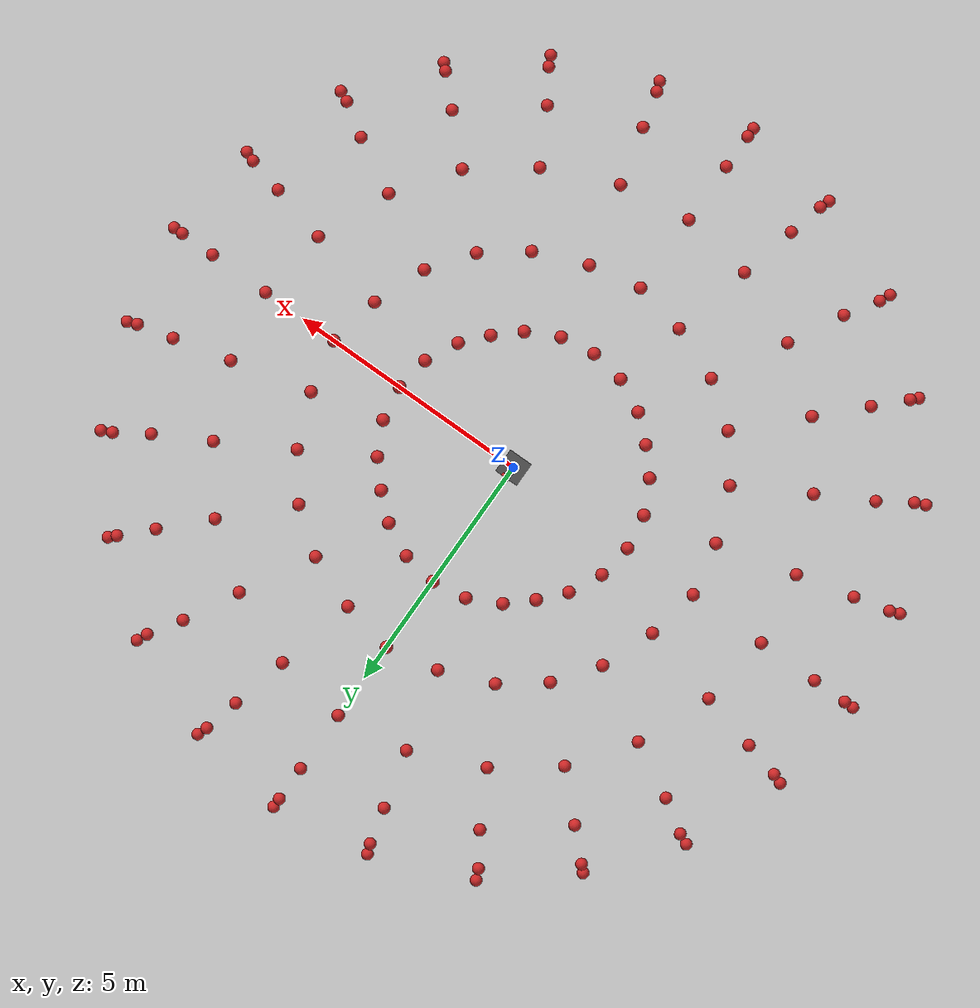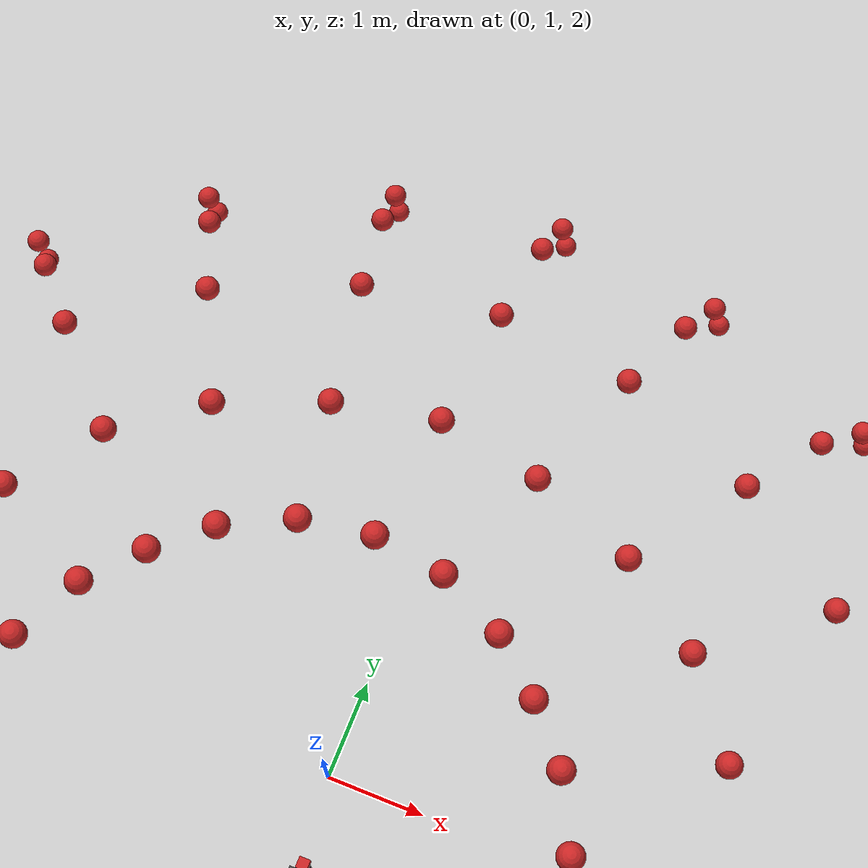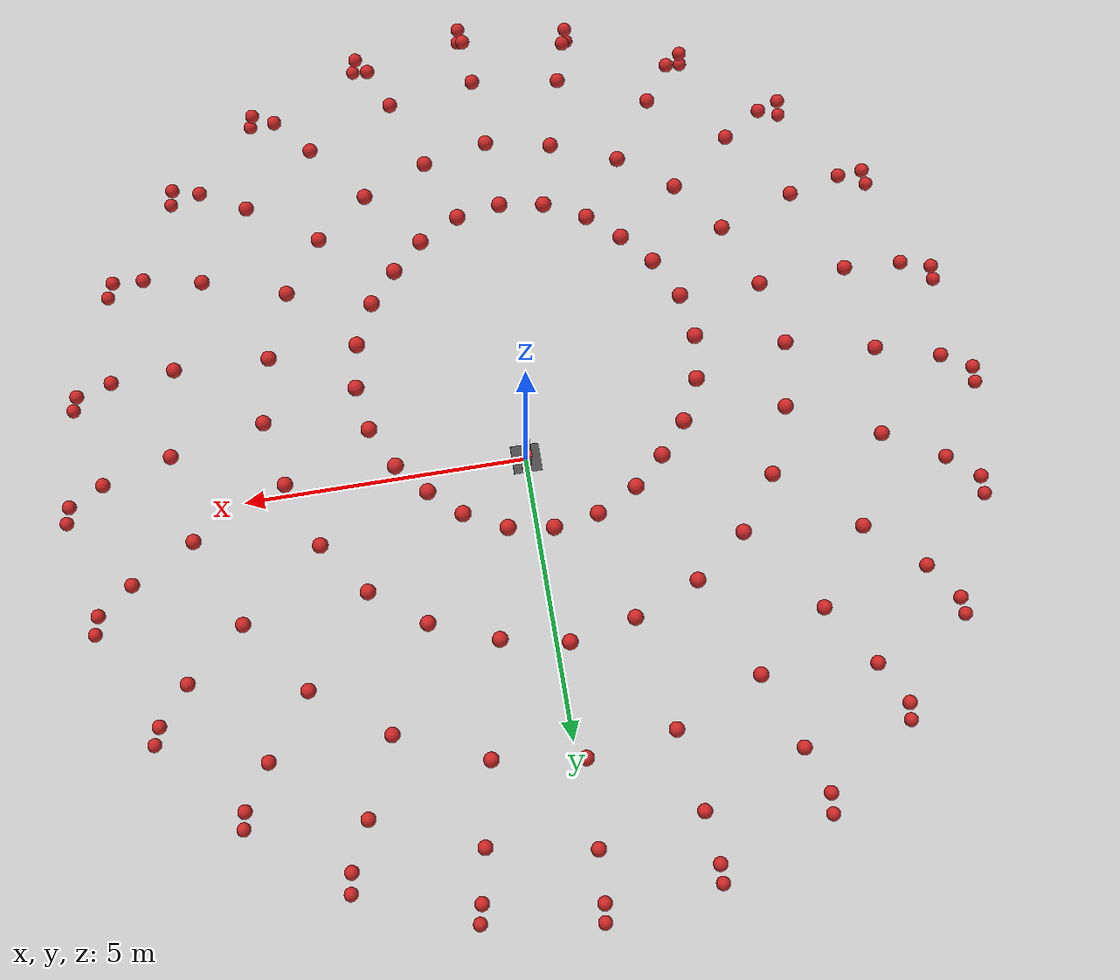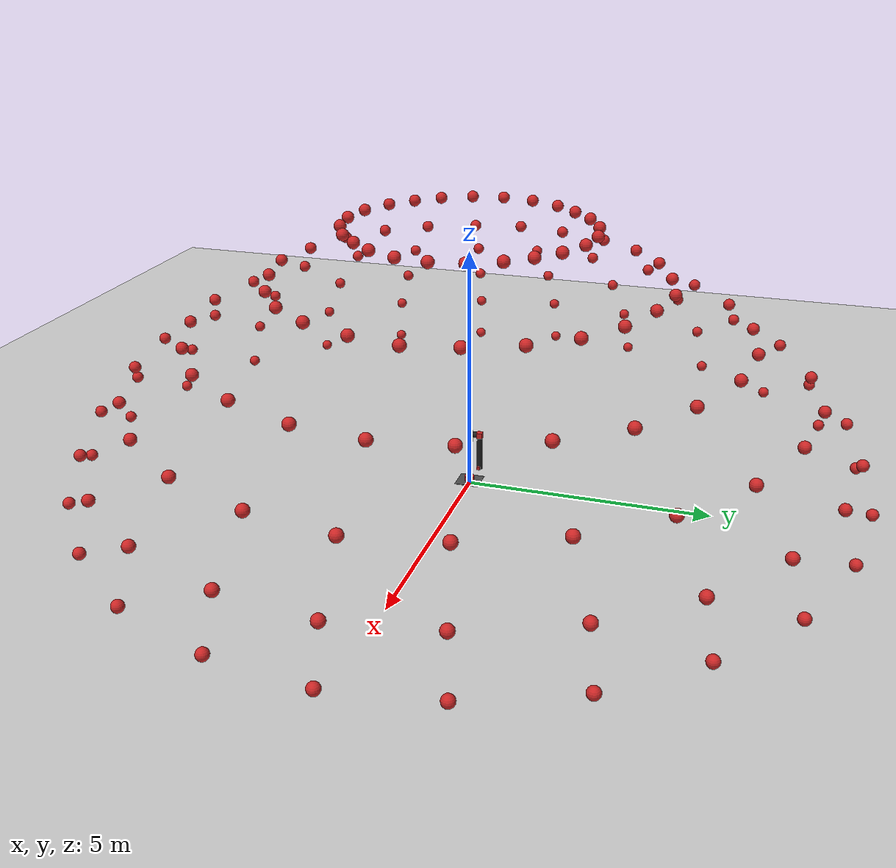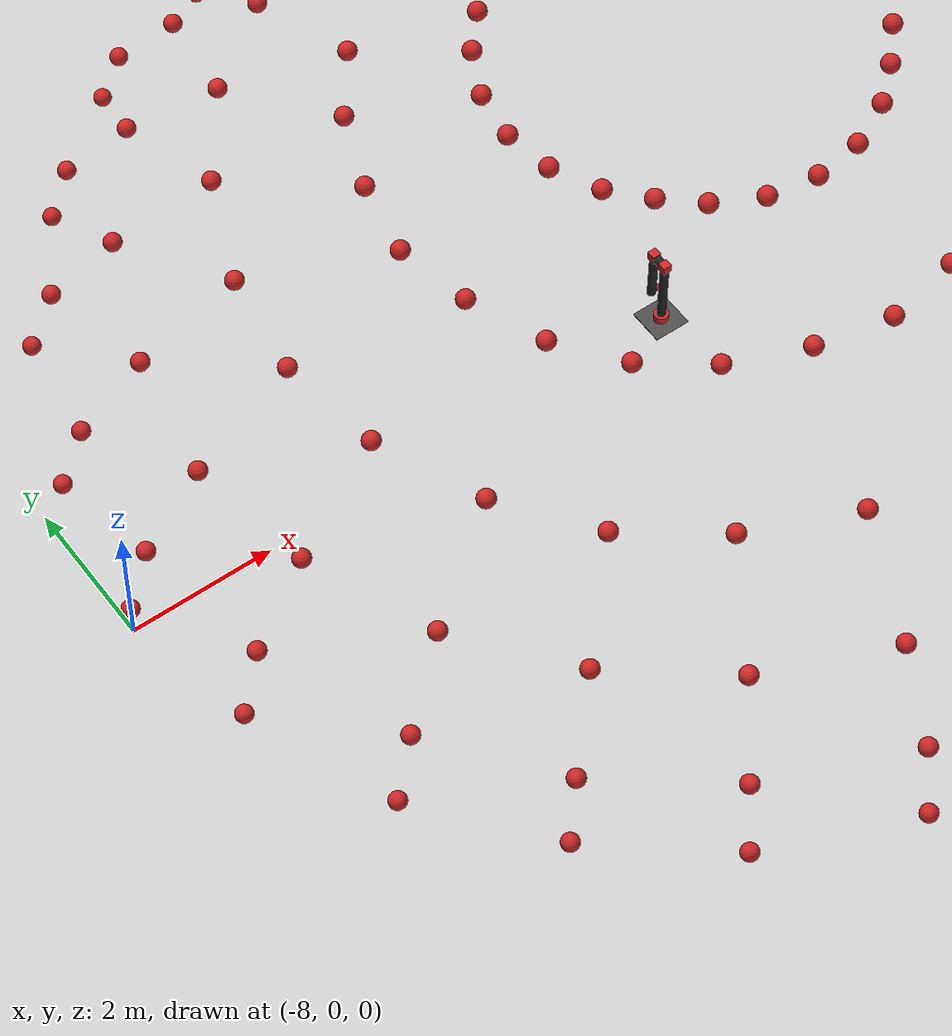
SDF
<?xml version="1.0"?>
<sdf version="1.7">
  <world name="puzzle_red_ball_test_world">
    <scene>
      <sky>
        <clouds>
          <speed>12.0</speed>
        </clouds>
      </sky>
      <shadows>true</shadows>
      <grid>false</grid>
      <origin_visual>false</origin_visual>
    </scene>

    <physics type="ode">
      <max_step_size>0.004</max_step_size>
      <real_time_factor>1</real_time_factor>
      <real_time_update_rate>250</real_time_update_rate>
      <max_contacts>10</max_contacts>
      <magnetic_field>6.0e-6 2.3e-5 -4.2e-5</magnetic_field>
      <ode>
        <solver>
          <type>quick</type>
          <iters>10</iters>
          <sor>1.3</sor>
          <use_dynamic_moi_rescaling>0</use_dynamic_moi_rescaling>
        </solver>
        <constraints>
          <cfm>0</cfm>
          <erp>0.2</erp>
          <contact_max_correcting_vel>100</contact_max_correcting_vel>
          <contact_surface_layer>0.001</contact_surface_layer>
        </constraints>
      </ode>
    </physics>

    <gui>
      <plugin name="ShootButton" filename="libGUIShootPlugin.so" />
    </gui>

    <!-- A global light source -->
    <include>
      <uri>model://sun</uri>
    </include>
    <!-- A ground plane -->
    <include>
      <uri>model://ground_plane</uri>
    </include>
    <include>
      <uri>model://asphalt_plane</uri>
    </include>

    <include>
      <uri>model://yp_gun</uri>
    </include>

    <include>
      <uri>model://red_ball</uri>
      <name>ball_0</name>
      <pose>0 8 0.5 0 0 0</pose>
      <static>true</static>
    </include>

    <include>
      <uri>model://red_ball</uri>
      <name>ball_2</name>
      <pose>8 0 0.5 0 0 0</pose>
      <static>true</static>
    </include>

    <include>
      <uri>model://red_ball</uri>
      <name>ball_4</name>
      <pose>0 -8 0.5 0 0 0</pose>
      <static>true</static>
    </include>

    <include>
      <uri>model://red_ball</uri>
      <name>ball_5</name>
      <pose>-8 0 0.5 0 0 0</pose>
      <static>true</static>
    </include>

    <include>
      <uri>model://red_ball</uri>
      <name>ball_1</name>
      <pose>5.6 5.6 0.5 0 0 0</pose>
      <static>true</static>
    </include>

    <include>
      <uri>model://red_ball</uri>
      <name>ball_7</name>
      <pose>-5.6 -5.6 0.5 0 0 0</pose>
      <static>true</static>
    </include>

    <include>
      <uri>model://red_ball</uri>
      <name>ball_3</name>
      <pose>5.6 -5.6 0.5 0 0 0</pose>
      <static>true</static>
    </include>

    <include>
      <uri>model://red_ball</uri>
      <name>ball_6</name>
      <pose>-5.6 5.6 0.5 0 0 0</pose>
      <static>true</static>
    </include>

    <include>
      <uri>model://red_ball</uri>
      <name>ball_9</name>
      <pose>4 6.9 0.5 0 0 0</pose>
      <static>true</static>
    </include>

    <include>
      <uri>model://red_ball</uri>
      <name>ball_10</name>
      <pose>-4 6.9 0.5 0 0 0</pose>
      <static>true</static>
    </include>

    <include>
      <uri>model://red_ball</uri>
      <name>ball_11</name>
      <pose>4 -6.9 0.5 0 0 0</pose>
      <static>true</static>
    </include>

    <include>
      <uri>model://red_ball</uri>
      <name>ball_12</name>
      <pose>-4 -6.9 0.5 0 0 0</pose>
      <static>true</static>
    </include>

    <include>
      <uri>model://red_ball</uri>
      <name>ball_13</name>
      <pose> 6.9 4 0.5 0 0 0</pose>
      <static>true</static>
    </include>

    <include>
      <uri>model://red_ball</uri>
      <name>ball_14</name>
      <pose> -6.9 -4 0.5 0 0 0</pose>
      <static>true</static>
    </include>

    <include>
      <uri>model://red_ball</uri>
      <name>ball_15</name>
      <pose> -6.9 4 0.5 0 0 0</pose>
      <static>true</static>
    </include>

    <include>
      <uri>model://red_ball</uri>
      <name>ball_16</name>
      <pose> 6.9 -4 0.5 0 0 0</pose>
      <static>true</static>
    </include>

    <include>
      <uri>model://red_ball</uri>
      <name>ball_17</name>
      <pose> 2 -7.7 0.5 0 0 0</pose>
      <static>true</static>
    </include>

    <include>
      <uri>model://red_ball</uri>
      <name>ball_18</name>
      <pose> 2 7.7 0.5 0 0 0</pose>
      <static>true</static>
    </include>

    <include>
      <uri>model://red_ball</uri>
      <name>ball_19</name>
      <pose> -2 7.7 0.5 0 0 0</pose>
      <static>true</static>
    </include>

    <include>
      <uri>model://red_ball</uri>
      <name>ball_20</name>
      <pose> -2 -7.7 0.5 0 0 0</pose>
      <static>true</static>
    </include>

    <include>
      <uri>model://red_ball</uri>
      <name>ball_21</name>
      <pose> 7.7 2 0.5 0 0 0</pose>
      <static>true</static>
    </include>

    <include>
      <uri>model://red_ball</uri>
      <name>ball_22</name>
      <pose> -7.7 -2 0.5 0 0 0</pose>
      <static>true</static>
    </include>

    <include>
      <uri>model://red_ball</uri>
      <name>ball_23</name>
      <pose> -7.7 2 0.5 0 0 0</pose>
      <static>true</static>
    </include>

    <include>
      <uri>model://red_ball</uri>
      <name>ball_24</name>
      <pose> 7.7 -2 0.5 0 0 0</pose>
      <static>true</static>
    </include>

    <include>
      <uri>model://red_ball</uri>
      <name>ball_25</name>
      <pose>0 7.7 1.5 0 0 0</pose>
      <static>true</static>
    </include>

    <include>
      <uri>model://red_ball</uri>
      <name>ball_26</name>
      <pose>7.7 0 1.5 0 0 0</pose>
      <static>true</static>
    </include>

    <include>
      <uri>model://red_ball</uri>
      <name>ball_27</name>
      <pose>0 -7.7 1.5 0 0 0</pose>
      <static>true</static>
    </include>

    <include>
      <uri>model://red_ball</uri>
      <name>ball_28</name>
      <pose>-7.7 0 1.5 0 0 0</pose>
      <static>true</static>
    </include>

    <include>
      <uri>model://red_ball</uri>
      <name>ball_29</name>
      <pose>5.4 5.4 1.5 0 0 0</pose>
      <static>true</static>
    </include>

    <include>
      <uri>model://red_ball</uri>
      <name>ball_30</name>
      <pose>-5.4 -5.4 1.5 0 0 0</pose>
      <static>true</static>
    </include>

    <include>
      <uri>model://red_ball</uri>
      <name>ball_31</name>
      <pose>5.4 -5.4 1.5 0 0 0</pose>
      <static>true</static>
    </include>

    <include>
      <uri>model://red_ball</uri>
      <name>ball_32</name>
      <pose>-5.4 5.4 1.5 0 0 0</pose>
      <static>true</static>
    </include>

    <include>
      <uri>model://red_ball</uri>
      <name>ball_33</name>
      <pose>3.85 6.6 1.5 0 0 0</pose>
      <static>true</static>
    </include>

    <include>
      <uri>model://red_ball</uri>
      <name>ball_34</name>
      <pose>-3.85 6.6 1.5 0 0 0</pose>
      <static>true</static>
    </include>

    <include>
      <uri>model://red_ball</uri>
      <name>ball_35</name>
      <pose>3.85 -6.6 1.5 0 0 0</pose>
      <static>true</static>
    </include>

    <include>
      <uri>model://red_ball</uri>
      <name>ball_36</name>
      <pose>-3.85 -6.6 1.5 0 0 0</pose>
      <static>true</static>
    </include>

    <include>
      <uri>model://red_ball</uri>
      <name>ball_37</name>
      <pose> 6.6 3.85 1.5 0 0 0</pose>
      <static>true</static>
    </include>

    <include>
      <uri>model://red_ball</uri>
      <name>ball_38</name>
      <pose> -6.6 -3.85 1.5 0 0 0</pose>
      <static>true</static>
    </include>

    <include>
      <uri>model://red_ball</uri>
      <name>ball_39</name>
      <pose> -6.6 3.85 1.5 0 0 0</pose>
      <static>true</static>
    </include>

    <include>
      <uri>model://red_ball</uri>
      <name>ball_40</name>
      <pose> 6.6 -3.85 1.5 0 0 0</pose>
      <static>true</static>
    </include>

    <include>
      <uri>model://red_ball</uri>
      <name>ball_41</name>
      <pose> 1.9 -7.4 1.5 0 0 0</pose>
      <static>true</static>
    </include>

    <include>
      <uri>model://red_ball</uri>
      <name>ball_42</name>
      <pose> 1.9 7.4 1.5 0 0 0</pose>
      <static>true</static>
    </include>

    <include>
      <uri>model://red_ball</uri>
      <name>ball_43</name>
      <pose> -1.9 7.4 1.5 0 0 0</pose>
      <static>true</static>
    </include>

    <include>
      <uri>model://red_ball</uri>
      <name>ball_44</name>
      <pose> -1.9 -7.4 1.5 0 0 0</pose>
      <static>true</static>
    </include>

    <include>
      <uri>model://red_ball</uri>
      <name>ball_45</name>
      <pose> 7.4 1.9 1.5 0 0 0</pose>
      <static>true</static>
    </include>

    <include>
      <uri>model://red_ball</uri>
      <name>ball_46</name>
      <pose> -7.4 -1.9 1.5 0 0 0</pose>
      <static>true</static>
    </include>

    <include>
      <uri>model://red_ball</uri>
      <name>ball_47</name>
      <pose> -7.4 1.9 1.5 0 0 0</pose>
      <static>true</static>
    </include>

    <include>
      <uri>model://red_ball</uri>
      <name>ball_48</name>
      <pose> 7.4 -1.9 1.5 0 0 0</pose>
      <static>true</static>
    </include>

    <include>
      <uri>model://red_ball</uri>
      <name>ball_49</name>
      <pose>0 6.9 2.5 0 0 0</pose>
      <static>true</static>
    </include>

    <include>
      <uri>model://red_ball</uri>
      <name>ball_50</name>
      <pose>6.9  0 2.5 0 0 0</pose>
      <static>true</static>
    </include>

    <include>
      <uri>model://red_ball</uri>
      <name>ball_51</name>
      <pose>0 -6.9 2.5 0 0 0</pose>
      <static>true</static>
    </include>

    <include>
      <uri>model://red_ball</uri>
      <name>ball_52</name>
      <pose>-6.9 0 2.5 0 0 0</pose>
      <static>true</static>
    </include>

    <include>
      <uri>model://red_ball</uri>
      <name>ball_53</name>
      <pose>4.8 4.8 2.5 0 0 0</pose>
      <static>true</static>
    </include>

    <include>
      <uri>model://red_ball</uri>
      <name>ball_54</name>
      <pose>-4.8 -4.8 2.5 0 0 0</pose>
      <static>true</static>
    </include>

    <include>
      <uri>model://red_ball</uri>
      <name>ball_55</name>
      <pose>4.8 -4.8 2.5 0 0 0</pose>
      <static>true</static>
    </include>

    <include>
      <uri>model://red_ball</uri>
      <name>ball_56</name>
      <pose>-4.8 4.8 2.5 0 0 0</pose>
      <static>true</static>
    </include>

    <include>
      <uri>model://red_ball</uri>
      <name>ball_57</name>
      <pose>3.4 5.9 2.5 0 0 0</pose>
      <static>true</static>
    </include>

    <include>
      <uri>model://red_ball</uri>
      <name>ball_58</name>
      <pose>-3.4 5.9 2.5 0 0 0</pose>
      <static>true</static>
    </include>

    <include>
      <uri>model://red_ball</uri>
      <name>ball_59</name>
      <pose>3.4 -5.9 2.5 0 0 0</pose>
      <static>true</static>
    </include>

    <include>
      <uri>model://red_ball</uri>
      <name>ball_60</name>
      <pose>-3.4 -5.9 2.5 0 0 0</pose>
      <static>true</static>
    </include>

    <include>
      <uri>model://red_ball</uri>
      <name>ball_61</name>
      <pose> 5.9 3.4 2.5 0 0 0</pose>
      <static>true</static>
    </include>

    <include>
      <uri>model://red_ball</uri>
      <name>ball_62</name>
      <pose> -5.9 -3.4 2.5 0 0 0</pose>
      <static>true</static>
    </include>

    <include>
      <uri>model://red_ball</uri>
      <name>ball_63</name>
      <pose> -5.9 3.4 2.5 0 0 0</pose>
      <static>true</static>
    </include>

    <include>
      <uri>model://red_ball</uri>
      <name>ball_64</name>
      <pose> 5.9 -3.4 2.5 0 0 0</pose>
      <static>true</static>
    </include>

    <include>
      <uri>model://red_ball</uri>
      <name>ball_65</name>
      <pose> 1.7 -6.6 2.5 0 0 0</pose>
      <static>true</static>
    </include>

    <include>
      <uri>model://red_ball</uri>
      <name>ball_66</name>
      <pose> 1.7 6.6 2.5 0 0 0</pose>
      <static>true</static>
    </include>

    <include>
      <uri>model://red_ball</uri>
      <name>ball_67</name>
      <pose> -1.7 6.6 2.5 0 0 0</pose>
      <static>true</static>
    </include>

    <include>
      <uri>model://red_ball</uri>
      <name>ball_68</name>
      <pose> -1.7 -6.6 2.5 0 0 0</pose>
      <static>true</static>
    </include>

    <include>
      <uri>model://red_ball</uri>
      <name>ball_69</name>
      <pose> 6.6 1.7 2.5 0 0 0</pose>
      <static>true</static>
    </include>

    <include>
      <uri>model://red_ball</uri>
      <name>ball_70</name>
      <pose> -6.6 -1.7 2.5 0 0 0</pose>
      <static>true</static>
    </include>

    <include>
      <uri>model://red_ball</uri>
      <name>ball_71</name>
      <pose> -6.6 1.7 2.5 0 0 0</pose>
      <static>true</static>
    </include>

    <include>
      <uri>model://red_ball</uri>
      <name>ball_72</name>
      <pose> 6.6 -1.7 2.5 0 0 0</pose>
      <static>true</static>
    </include>

    <include>
      <uri>model://red_ball</uri>
      <name>ball_73</name>
      <pose>0 5.6 3.5 0 0 0</pose>
      <static>true</static>
    </include>

    <include>
      <uri>model://red_ball</uri>
      <name>ball_74</name>
      <pose>5.6  0 3.5 0 0 0</pose>
      <static>true</static>
    </include>

    <include>
      <uri>model://red_ball</uri>
      <name>ball_75</name>
      <pose>0 -5.6 3.5 0 0 0</pose>
      <static>true</static>
    </include>

    <include>
      <uri>model://red_ball</uri>
      <name>ball_76</name>
      <pose>-5.6 0 3.5 0 0 0</pose>
      <static>true</static>
    </include>

    <include>
      <uri>model://red_ball</uri>
      <name>ball_77</name>
      <pose>3.95 3.95 3.5 0 0 0</pose>
      <static>true</static>
    </include>

    <include>
      <uri>model://red_ball</uri>
      <name>ball_78</name>
      <pose>-3.95 -3.95 3.5 0 0 0</pose>
      <static>true</static>
    </include>

    <include>
      <uri>model://red_ball</uri>
      <name>ball_79</name>
      <pose>3.95 -3.95 3.5 0 0 0</pose>
      <static>true</static>
    </include>

    <include>
      <uri>model://red_ball</uri>
      <name>ball_80</name>
      <pose>-3.95 3.95 3.5 0 0 0</pose>
      <static>true</static>
    </include>

    <include>
      <uri>model://red_ball</uri>
      <name>ball_81</name>
      <pose>2.8 4.8 3.5 0 0 0</pose>
      <static>true</static>
    </include>

    <include>
      <uri>model://red_ball</uri>
      <name>ball_82</name>
      <pose>-2.8 4.8 3.5 0 0 0</pose>
      <static>true</static>
    </include>

    <include>
      <uri>model://red_ball</uri>
      <name>ball_83</name>
      <pose>2.8 -4.8 3.5 0 0 0</pose>
      <static>true</static>
    </include>

    <include>
      <uri>model://red_ball</uri>
      <name>ball_84</name>
      <pose>-2.8 -4.8 3.5 0 0 0</pose>
      <static>true</static>
    </include>

    <include>
      <uri>model://red_ball</uri>
      <name>ball_85</name>
      <pose> 4.8 2.8 3.5 0 0 0</pose>
      <static>true</static>
    </include>

    <include>
      <uri>model://red_ball</uri>
      <name>ball_86</name>
      <pose> -4.8 -2.8 3.5 0 0 0</pose>
      <static>true</static>
    </include>

    <include>
      <uri>model://red_ball</uri>
      <name>ball_87</name>
      <pose> -4.8 2.8 3.5 0 0 0</pose>
      <static>true</static>
    </include>

    <include>
      <uri>model://red_ball</uri>
      <name>ball_88</name>
      <pose> 4.8 -2.8 3.5 0 0 0</pose>
      <static>true</static>
    </include>

    <include>
      <uri>model://red_ball</uri>
      <name>ball_89</name>
      <pose> 1.4 -5.4 3.5 0 0 0</pose>
      <static>true</static>
    </include>

    <include>
      <uri>model://red_ball</uri>
      <name>ball_90</name>
      <pose> 1.4 5.4 3.5 0 0 0</pose>
      <static>true</static>
    </include>

    <include>
      <uri>model://red_ball</uri>
      <name>ball_91</name>
      <pose> -1.4 5.4 3.5 0 0 0</pose>
      <static>true</static>
    </include>

    <include>
      <uri>model://red_ball</uri>
      <name>ball_92</name>
      <pose> -1.4 -5.4 3.5 0 0 0</pose>
      <static>true</static>
    </include>

    <include>
      <uri>model://red_ball</uri>
      <name>ball_93</name>
      <pose> 5.4 1.4 3.5 0 0 0</pose>
      <static>true</static>
    </include>

    <include>
      <uri>model://red_ball</uri>
      <name>ball_94</name>
      <pose> -5.4 -1.4 3.5 0 0 0</pose>
      <static>true</static>
    </include>

    <include>
      <uri>model://red_ball</uri>
      <name>ball_95</name>
      <pose> -5.4 1.4 3.5 0 0 0</pose>
      <static>true</static>
    </include>

    <include>
      <uri>model://red_ball</uri>
      <name>ball_96</name>
      <pose> 5.4 -1.4 3.5 0 0 0</pose>
      <static>true</static>
    </include>

    <include>
      <uri>model://red_ball</uri>
      <name>ball_97</name>
      <pose>0 4 4.5 0 0 0</pose>
      <static>true</static>
    </include>

    <include>
      <uri>model://red_ball</uri>
      <name>ball_98</name>
      <pose>4  0 4.5 0 0 0</pose>
      <static>true</static>
    </include>

    <include>
      <uri>model://red_ball</uri>
      <name>ball_99</name>
      <pose>0 -4 4.5 0 0 0</pose>
      <static>true</static>
    </include>

    <include>
      <uri>model://red_ball</uri>
      <name>ball_100</name>
      <pose>-4 0 4.5 0 0 0</pose>
      <static>true</static>
    </include>

    <include>
      <uri>model://red_ball</uri>
      <name>ball_101</name>
      <pose>2.8 2.8 4.5 0 0 0</pose>
      <static>true</static>
    </include>

    <include>
      <uri>model://red_ball</uri>
      <name>ball_102</name>
      <pose>-2.8 -2.8 4.5 0 0 0</pose>
      <static>true</static>
    </include>

    <include>
      <uri>model://red_ball</uri>
      <name>ball_103</name>
      <pose>2.8 -2.8 4.5 0 0 0</pose>
      <static>true</static>
    </include>

    <include>
      <uri>model://red_ball</uri>
      <name>ball_104</name>
      <pose>-2.8 2.8 4.5 0 0 0</pose>
      <static>true</static>
    </include>

    <include>
      <uri>model://red_ball</uri>
      <name>ball_105</name>
      <pose>2 3.4 4.5 0 0 0</pose>
      <static>true</static>
    </include>

    <include>
      <uri>model://red_ball</uri>
      <name>ball_106</name>
      <pose>-2 3.4 4.5 0 0 0</pose>
      <static>true</static>
    </include>

    <include>
      <uri>model://red_ball</uri>
      <name>ball_107</name>
      <pose>2 -3.4 4.5 0 0 0</pose>
      <static>true</static>
    </include>

    <include>
      <uri>model://red_ball</uri>
      <name>ball_108</name>
      <pose>-2 -3.4 4.5 0 0 0</pose>
      <static>true</static>
    </include>

    <include>
      <uri>model://red_ball</uri>
      <name>ball_109</name>
      <pose> 3.4 2 4.5 0 0 0</pose>
      <static>true</static>
    </include>

    <include>
      <uri>model://red_ball</uri>
      <name>ball_110</name>
      <pose> -3.4 -2 4.5 0 0 0</pose>
      <static>true</static>
    </include>

    <include>
      <uri>model://red_ball</uri>
      <name>ball_111</name>
      <pose> -3.4 2 4.5 0 0 0</pose>
      <static>true</static>
    </include>

    <include>
      <uri>model://red_ball</uri>
      <name>ball_112</name>
      <pose> 3.4 -2 4.5 0 0 0</pose>
      <static>true</static>
    </include>

    <include>
      <uri>model://red_ball</uri>
      <name>ball_113</name>
      <pose> 1 -3.8 4.5 0 0 0</pose>
      <static>true</static>
    </include>

    <include>
      <uri>model://red_ball</uri>
      <name>ball_114</name>
      <pose> 1 3.8 4.5 0 0 0</pose>
      <static>true</static>
    </include>

    <include>
      <uri>model://red_ball</uri>
      <name>ball_115</name>
      <pose> -1 3.8 4.5 0 0 0</pose>
      <static>true</static>
    </include>

    <include>
      <uri>model://red_ball</uri>
      <name>ball_116</name>
      <pose> -1 -3.8 4.5 0 0 0</pose>
      <static>true</static>
    </include>

    <include>
      <uri>model://red_ball</uri>
      <name>ball_117</name>
      <pose> 3.8 1 4.5 0 0 0</pose>
      <static>true</static>
    </include>

    <include>
      <uri>model://red_ball</uri>
      <name>ball_118</name>
      <pose> -3.8 -1 4.5 0 0 0</pose>
      <static>true</static>
    </include>

    <include>
      <uri>model://red_ball</uri>
      <name>ball_119</name>
      <pose> -3.8 1 4.5 0 0 0</pose>
      <static>true</static>
    </include>

    <include>
      <uri>model://red_ball</uri>
      <name>ball_120</name>
      <pose> 3.8 -1 4.5 0 0 0</pose>
      <static>true</static>
    </include>

    <include>
      <uri>model://red_ball</uri>
      <name>ball_121</name>
      <pose>0 2.5 5.5 0 0 0</pose>
      <static>true</static>
    </include>

    <include>
      <uri>model://red_ball</uri>
      <name>ball_122</name>
      <pose>2.5  0 5.5 0 0 0</pose>
      <static>true</static>
    </include>

    <include>
      <uri>model://red_ball</uri>
      <name>ball_123</name>
      <pose>0 -2.5 5.5 0 0 0</pose>
      <static>true</static>
    </include>

    <include>
      <uri>model://red_ball</uri>
      <name>ball_124</name>
      <pose>-2.5 0 5.5 0 0 0</pose>
      <static>true</static>
    </include>

    <include>
      <uri>model://red_ball</uri>
      <name>ball_125</name>
      <pose>1.7 1.7 5.5 0 0 0</pose>
      <static>true</static>
    </include>

    <include>
      <uri>model://red_ball</uri>
      <name>ball_126</name>
      <pose>-1.7 -1.7 5.5 0 0 0</pose>
      <static>true</static>
    </include>

    <include>
      <uri>model://red_ball</uri>
      <name>ball_127</name>
      <pose>1.7 -1.7 5.5 0 0 0</pose>
      <static>true</static>
    </include>

    <include>
      <uri>model://red_ball</uri>
      <name>ball_128</name>
      <pose>-1.7 1.7 5.5 0 0 0</pose>
      <static>true</static>
    </include>

    <include>
      <uri>model://red_ball</uri>
      <name>ball_129</name>
      <pose>1.25 2.1 5.5 0 0 0</pose>
      <static>true</static>
    </include>

    <include>
      <uri>model://red_ball</uri>
      <name>ball_130</name>
      <pose>-1.25 2.1 5.5 0 0 0</pose>
      <static>true</static>
    </include>

    <include>
      <uri>model://red_ball</uri>
      <name>ball_131</name>
      <pose>1.25 -2.1 5.5 0 0 0</pose>
      <static>true</static>
    </include>

    <include>
      <uri>model://red_ball</uri>
      <name>ball_132</name>
      <pose>-1.25 -2.1 5.5 0 0 0</pose>
      <static>true</static>
    </include>

    <include>
      <uri>model://red_ball</uri>
      <name>ball_133</name>
      <pose> 2.1 1.25 5.5 0 0 0</pose>
      <static>true</static>
    </include>

    <include>
      <uri>model://red_ball</uri>
      <name>ball_134</name>
      <pose> -2.1 -1.25 5.5 0 0 0</pose>
      <static>true</static>
    </include>

    <include>
      <uri>model://red_ball</uri>
      <name>ball_135</name>
      <pose> -2.1 1.25 5.5 0 0 0</pose>
      <static>true</static>
    </include>

    <include>
      <uri>model://red_ball</uri>
      <name>ball_136</name>
      <pose> 2.1 -1.25 5.5 0 0 0</pose>
      <static>true</static>
    </include>

    <include>
      <uri>model://red_ball</uri>
      <name>ball_137</name>
      <pose> 2.4 -0.65 5.5 0 0 0</pose>
      <static>true</static>
    </include>

    <include>
      <uri>model://red_ball</uri>
      <name>ball_138</name>
      <pose> 2.4 0.65 5.5 0 0 0</pose>
      <static>true</static>
    </include>

    <include>
      <uri>model://red_ball</uri>
      <name>ball_139</name>
      <pose> -2.4 0.65 5.5 0 0 0</pose>
      <static>true</static>
    </include>

    <include>
      <uri>model://red_ball</uri>
      <name>ball_140</name>
      <pose> -2.4 -0.65 5.5 0 0 0</pose>
      <static>true</static>
    </include>

    <include>
      <uri>model://red_ball</uri>
      <name>ball_141</name>
      <pose> 0.65 2.4 5.5 0 0 0</pose>
      <static>true</static>
    </include>

    <include>
      <uri>model://red_ball</uri>
      <name>ball_142</name>
      <pose> -0.65 -2.4 5.5 0 0 0</pose>
      <static>true</static>
    </include>

    <include>
      <uri>model://red_ball</uri>
      <name>ball_143</name>
      <pose> -0.65 2.4 5.5 0 0 0</pose>
      <static>true</static>
    </include>

    <include>
      <uri>model://red_ball</uri>
      <name>ball_144</name>
      <pose> 0.65 -2.4 5.5 0 0 0</pose>
      <static>true</static>
    </include>
  </world>
</sdf>

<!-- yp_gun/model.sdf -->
<sdf version='1.7'>
  <model name='yp_gun'>
    <pose>0 0 0 0 0 0</pose>
    <link name='base'>
      <inertial>
        <mass>2000</mass>
        <inertia>
          <ixx>10</ixx>
          <ixy>0</ixy>
          <ixz>0</ixz>
          <iyy>10</iyy>
          <iyz>0</iyz>
          <izz>10</izz>
        </inertia>
        <pose>0 0 0 0 0 0</pose>
      </inertial>
      <self_collide>0</self_collide>
      <enable_wind>0</enable_wind>
      <kinematic>0</kinematic>
      <pose>0 -0 0.125 0 -0 0</pose>
      <gravity>1</gravity>
      <visual name='visual_1'>
        <geometry>
          <cylinder>
            <radius>0.06</radius>
            <length>0.9</length>
          </cylinder>
        </geometry>
        <material>
          <script>
            <name>Gazebo/FlatBlack</name>
            <uri>file://media/materials/scripts/gazebo.material</uri>
          </script>
        </material>
        <pose>0 0 0.5 0 -0 0</pose>
        <transparency>0</transparency>
        <cast_shadows>1</cast_shadows>
      </visual>
      <visual name='visual'>
        <geometry>
          <cylinder>
            <radius>0.1</radius>
            <length>0.1</length>
          </cylinder>
        </geometry>
        <material>
          <script>
            <name>Gazebo/RedBright</name>
            <uri>file://media/materials/scripts/gazebo.material</uri>
          </script>
        </material>
        <pose>0 0 0 0 0 0</pose>
        <transparency>0</transparency>
        <cast_shadows>1</cast_shadows>
      </visual>
      <visual name='visual_2'>
        <geometry>
          <box>
            <size>0.5 0.5 0.01</size>
          </box>
        </geometry>
        <material>
          <script>
            <name>Gazebo/DarkGrey</name>
            <uri>file://media/materials/scripts/gazebo.material</uri>
          </script>
        </material>
        <pose>0 0 -0.055 0 -0 0</pose>
        <transparency>0</transparency>
        <cast_shadows>1</cast_shadows>
      </visual>
      <collision name='collision_2'>
        <laser_retro>0</laser_retro>
        <max_contacts>10</max_contacts>
        <pose>0 0 -0.055 0 -0 0</pose>
        <geometry>
          <box>
            <size>0.5 0.5 0.01</size>
          </box>
        </geometry>
        <surface>
          <friction>
            <ode>
              <mu>100</mu>
              <mu2>100</mu2>
              <fdir1>0 0 0</fdir1>
              <slip1>0</slip1>
              <slip2>0</slip2>
            </ode>
            <torsional>
              <coefficient>1</coefficient>
              <patch_radius>0</patch_radius>
              <surface_radius>0</surface_radius>
              <use_patch_radius>1</use_patch_radius>
              <ode>
                <slip>0</slip>
              </ode>
            </torsional>
          </friction>
          <bounce>
            <restitution_coefficient>0</restitution_coefficient>
            <threshold>1e+06</threshold>
          </bounce>
          <contact>
            <collide_without_contact>0</collide_without_contact>
            <collide_without_contact_bitmask>1</collide_without_contact_bitmask>
            <collide_bitmask>1</collide_bitmask>
            <ode>
              <soft_cfm>0</soft_cfm>
              <soft_erp>0.2</soft_erp>
              <kp>1e+13</kp>
              <kd>1</kd>
              <max_vel>0.01</max_vel>
              <min_depth>0</min_depth>
            </ode>
            <bullet>
              <split_impulse>1</split_impulse>
              <split_impulse_penetration_threshold>-0.01</split_impulse_penetration_threshold>
              <soft_cfm>0</soft_cfm>
              <soft_erp>0.2</soft_erp>
              <kp>1e+13</kp>
              <kd>1</kd>
            </bullet>
          </contact>
        </surface>
      </collision>
      <collision name='collision_1'>
        <laser_retro>0</laser_retro>
        <max_contacts>10</max_contacts>
        <pose>0 0 0.5 0 -0 0</pose>
        <geometry>
          <cylinder>
            <radius>0.06</radius>
            <length>0.9</length>
          </cylinder>
        </geometry>
        <surface>
          <friction>
            <ode>
              <mu>1</mu>
              <mu2>1</mu2>
              <fdir1>0 0 0</fdir1>
              <slip1>0</slip1>
              <slip2>0</slip2>
            </ode>
            <torsional>
              <coefficient>1</coefficient>
              <patch_radius>0</patch_radius>
              <surface_radius>0</surface_radius>
              <use_patch_radius>1</use_patch_radius>
              <ode>
                <slip>0</slip>
              </ode>
            </torsional>
          </friction>
          <bounce>
            <restitution_coefficient>0</restitution_coefficient>
            <threshold>1e+06</threshold>
          </bounce>
          <contact>
            <collide_without_contact>0</collide_without_contact>
            <collide_without_contact_bitmask>1</collide_without_contact_bitmask>
            <collide_bitmask>1</collide_bitmask>
            <ode>
              <soft_cfm>0</soft_cfm>
              <soft_erp>0.2</soft_erp>
              <kp>1e+13</kp>
              <kd>1</kd>
              <max_vel>0.01</max_vel>
              <min_depth>0</min_depth>
            </ode>
            <bullet>
              <split_impulse>1</split_impulse>
              <split_impulse_penetration_threshold>-0.01</split_impulse_penetration_threshold>
              <soft_cfm>0</soft_cfm>
              <soft_erp>0.2</soft_erp>
              <kp>1e+13</kp>
              <kd>1</kd>
            </bullet>
          </contact>
        </surface>
      </collision>
      <collision name='collision'>
        <laser_retro>0</laser_retro>
        <max_contacts>10</max_contacts>
        <pose>0 0 0 0 -0 0</pose>
        <geometry>
          <cylinder>
            <radius>0.1</radius>
            <length>0.1</length>
          </cylinder>
        </geometry>
        <surface>
          <friction>
            <ode>
              <mu>1</mu>
              <mu2>1</mu2>
              <fdir1>0 0 0</fdir1>
              <slip1>0</slip1>
              <slip2>0</slip2>
            </ode>
            <torsional>
              <coefficient>1</coefficient>
              <patch_radius>0</patch_radius>
              <surface_radius>0</surface_radius>
              <use_patch_radius>1</use_patch_radius>
              <ode>
                <slip>0</slip>
              </ode>
            </torsional>
          </friction>
          <bounce>
            <restitution_coefficient>0</restitution_coefficient>
            <threshold>1e+06</threshold>
          </bounce>
          <contact>
            <collide_without_contact>0</collide_without_contact>
            <collide_without_contact_bitmask>1</collide_without_contact_bitmask>
            <collide_bitmask>1</collide_bitmask>
            <ode>
              <soft_cfm>0</soft_cfm>
              <soft_erp>0.2</soft_erp>
              <kp>1e+13</kp>
              <kd>1</kd>
              <max_vel>0.01</max_vel>
              <min_depth>0</min_depth>
            </ode>
            <bullet>
              <split_impulse>1</split_impulse>
              <split_impulse_penetration_threshold>-0.01</split_impulse_penetration_threshold>
              <soft_cfm>0</soft_cfm>
              <soft_erp>0.2</soft_erp>
              <kp>1e+13</kp>
              <kd>1</kd>
            </bullet>
          </contact>
        </surface>
      </collision>
    </link>

    <link name='bullet_spawner'>
      <pose>-0.000279 0.22008 0.21715 2e-06 2e-06 -2.8e-05</pose>
      <gravity>0</gravity>
      <self_collide>0</self_collide>
      <kinematic>0</kinematic>
      <enable_wind>0</enable_wind>
      <inertial>
        <pose>0 0 0 0 -0 0</pose>
        <inertia>
          <ixx>.1</ixx>
          <ixy>0</ixy>
          <ixz>0</ixz>
          <iyy>.1</iyy>
          <iyz>0</iyz>
          <izz>.1</izz>
        </inertia>
        <mass>0.000001</mass>
      </inertial>
      <visual name='visual'>
        <pose>0 0 0 0 -0 0</pose>
        <geometry>
          <sphere>
            <radius>0.08</radius>
          </sphere>
        </geometry>
        <material>
          <lighting>1</lighting>
          <shader type='pixel'/>
        </material>
        <transparency>1</transparency>
        <cast_shadows>0</cast_shadows>
      </visual>
    </link>

    <link name='pitch_1'>
      <inertial>
        <mass>26.6242</mass>
        <inertia>
          <ixx>0.0159745</ixx>
          <ixy>0</ixy>
          <ixz>0</ixz>
          <iyy>0.0159745</iyy>
          <iyz>0</iyz>
          <izz>0.0159745</izz>
        </inertia>
        <pose>0 0 0 0 -0 0</pose>
      </inertial>
      <pose>-0 0.22 1.135 0 -0 0</pose>
      <self_collide>0</self_collide>
      <enable_wind>0</enable_wind>
      <kinematic>0</kinematic>
      <gravity>1</gravity>
      <visual name='visual'>
        <pose>0 0 0 0 -0 0</pose>
        <geometry>
          <box>
            <size>0.12 0.12 0.12</size>
          </box>
        </geometry>
        <material>
          <script>
            <name>Gazebo/RedBright</name>
            <uri>file://media/materials/scripts/gazebo.material</uri>
          </script>
        </material>
        <transparency>0</transparency>
        <cast_shadows>1</cast_shadows>
      </visual>
      <visual name='visual_1'>
        <geometry>
          <cylinder>
            <radius>0.06</radius>
            <length>0.7</length>
          </cylinder>
        </geometry>
        <material>
          <lighting>1</lighting>
          <script>
            <uri>file://media/materials/scripts/gazebo.material</uri>
            <name>Gazebo/FlatBlack</name>
          </script>
        </material>
        <pose>0 0 -0.41 0 -0 0</pose>
        <transparency>0</transparency>
        <cast_shadows>1</cast_shadows>
      </visual>
      <visual name='visual_2'>
        <pose>0.08 0 -0.72 0 -0 0</pose>
        <geometry>
          <box>
            <size>0.06 0.06 0.06</size>
          </box>
        </geometry>
        <material>
          <script>
            <name>Gazebo/RedBright</name>
            <uri>file://media/materials/scripts/gazebo.material</uri>
          </script>
        </material>
        <transparency>0</transparency>
        <cast_shadows>1</cast_shadows>
      </visual>

      <collision name='collision_3'>
        <laser_retro>0</laser_retro>
        <max_contacts>10</max_contacts>
        <pose>0.08 0 -0.72 0 -0 0</pose>
        <geometry>
          <box>
            <size>0.06 0.06 0.06</size>
          </box>
        </geometry>
        <surface>
          <friction>
            <ode>
              <mu>1</mu>
              <mu2>1</mu2>
              <fdir1>1 0 0</fdir1>
              <slip1>0</slip1>
              <slip2>0</slip2>
            </ode>
            <torsional>
              <coefficient>1</coefficient>
              <patch_radius>0</patch_radius>
              <surface_radius>0</surface_radius>
              <use_patch_radius>1</use_patch_radius>
              <ode>
                <slip>0</slip>
              </ode>
            </torsional>
          </friction>
          <bounce>
            <restitution_coefficient>0</restitution_coefficient>
            <threshold>1e+06</threshold>
          </bounce>
          <contact>
            <collide_without_contact>0</collide_without_contact>
            <collide_without_contact_bitmask>1</collide_without_contact_bitmask>
            <collide_bitmask>1</collide_bitmask>
            <ode>
              <soft_cfm>0</soft_cfm>
              <soft_erp>0.2</soft_erp>
              <kp>1e+13</kp>
              <kd>1</kd>
              <max_vel>0.01</max_vel>
              <min_depth>0</min_depth>
            </ode>
            <bullet>
              <split_impulse>1</split_impulse>
              <split_impulse_penetration_threshold>-0.01</split_impulse_penetration_threshold>
              <soft_cfm>0</soft_cfm>
              <soft_erp>0.2</soft_erp>
              <kp>1e+13</kp>
              <kd>1</kd>
            </bullet>
          </contact>
        </surface>
      </collision>
      <collision name='collision'>
        <laser_retro>0</laser_retro>
        <max_contacts>10</max_contacts>
        <pose>0 0 0 0 -0 0</pose>
        <geometry>
          <box>
            <size>0.12 0.12 0.12</size>
          </box>
        </geometry>
        <surface>
          <friction>
            <ode>
              <mu>1</mu>
              <mu2>1</mu2>
              <fdir1>0 0 0</fdir1>
              <slip1>0</slip1>
              <slip2>0</slip2>
            </ode>
            <torsional>
              <coefficient>1</coefficient>
              <patch_radius>0</patch_radius>
              <surface_radius>0</surface_radius>
              <use_patch_radius>1</use_patch_radius>
              <ode>
                <slip>0</slip>
              </ode>
            </torsional>
          </friction>
          <bounce>
            <restitution_coefficient>0</restitution_coefficient>
            <threshold>1e+06</threshold>
          </bounce>
          <contact>
            <collide_without_contact>0</collide_without_contact>
            <collide_without_contact_bitmask>1</collide_without_contact_bitmask>
            <collide_bitmask>1</collide_bitmask>
            <ode>
              <soft_cfm>0</soft_cfm>
              <soft_erp>0.2</soft_erp>
              <kp>1e+13</kp>
              <kd>1</kd>
              <max_vel>0.01</max_vel>
              <min_depth>0</min_depth>
            </ode>
            <bullet>
              <split_impulse>1</split_impulse>
              <split_impulse_penetration_threshold>-0.01</split_impulse_penetration_threshold>
              <soft_cfm>0</soft_cfm>
              <soft_erp>0.2</soft_erp>
              <kp>1e+13</kp>
              <kd>1</kd>
            </bullet>
          </contact>
        </surface>
      </collision>
      <collision name='collision_1'>
        <laser_retro>0</laser_retro>
        <max_contacts>10</max_contacts>
        <pose>0 0 -0.41 0 -0 0</pose>
        <geometry>
          <cylinder>
            <radius>0.06</radius>
            <length>0.7</length>
          </cylinder>
        </geometry>
        <surface>
          <friction>
            <ode>
              <mu>1</mu>
              <mu2>1</mu2>
              <fdir1>0 0 0</fdir1>
              <slip1>0</slip1>
              <slip2>0</slip2>
            </ode>
            <torsional>
              <coefficient>1</coefficient>
              <patch_radius>0</patch_radius>
              <surface_radius>0</surface_radius>
              <use_patch_radius>1</use_patch_radius>
              <ode>
                <slip>0</slip>
              </ode>
            </torsional>
          </friction>
          <bounce>
            <restitution_coefficient>0</restitution_coefficient>
            <threshold>1e+06</threshold>
          </bounce>
          <contact>
            <collide_without_contact>0</collide_without_contact>
            <collide_without_contact_bitmask>1</collide_without_contact_bitmask>
            <collide_bitmask>1</collide_bitmask>
            <ode>
              <soft_cfm>0</soft_cfm>
              <soft_erp>0.2</soft_erp>
              <kp>1e+13</kp>
              <kd>1</kd>
              <max_vel>0.01</max_vel>
              <min_depth>0</min_depth>
            </ode>
            <bullet>
              <split_impulse>1</split_impulse>
              <split_impulse_penetration_threshold>-0.01</split_impulse_penetration_threshold>
              <soft_cfm>0</soft_cfm>
              <soft_erp>0.2</soft_erp>
              <kp>1e+13</kp>
              <kd>1</kd>
            </bullet>
          </contact>
        </surface>
      </collision>
    </link>

    <link name='yaw_1'>
      <inertial>
        <mass>7.71923</mass>
        <inertia>
          <ixx>0.01338</ixx>
          <ixy>0</ixy>
          <ixz>0</ixz>
          <iyy>0.01338</iyy>
          <iyz>0</iyz>
          <izz>0.0138946</izz>
        </inertia>
        <pose>0 0 0 0 -0 0</pose>
      </inertial>
      <pose>-0 -0 1.135 0 -0 0</pose>
      <self_collide>0</self_collide>
      <enable_wind>0</enable_wind>
      <kinematic>0</kinematic>
      <gravity>1</gravity>
      <visual name='visual_2'>
        <geometry>
          <cylinder>
            <radius>0.06</radius>
            <length>0.1</length>
          </cylinder>
        </geometry>
        <material>
          <script>
            <name>Gazebo/FlatBlack</name>
            <uri>file://media/materials/scripts/gazebo.material</uri>
          </script>
        </material>
        <pose>0 0.11 0 1.57 -0 0</pose>
        <transparency>0</transparency>
        <cast_shadows>1</cast_shadows>
      </visual>
      <visual name='visual'>
        <geometry>
          <box>
            <size>0.12 0.12 0.12</size>
          </box>
        </geometry>
        <material>
          <script>
            <name>Gazebo/RedBright</name>
            <uri>file://media/materials/scripts/gazebo.material</uri>
          </script>
        </material>
        <pose>0 0 0 0 -0 0</pose>
        <transparency>0</transparency>
        <cast_shadows>1</cast_shadows>
      </visual>
      <collision name='collision'>
        <laser_retro>0</laser_retro>
        <max_contacts>10</max_contacts>
        <pose>0 0 0 0 -0 0</pose>
        <geometry>
          <box>
            <size>0.12 0.12 0.12</size>
          </box>
        </geometry>
        <surface>
          <friction>
            <ode>
              <mu>1</mu>
              <mu2>1</mu2>
              <fdir1>0 0 0</fdir1>
              <slip1>0</slip1>
              <slip2>0</slip2>
            </ode>
            <torsional>
              <coefficient>1</coefficient>
              <patch_radius>0</patch_radius>
              <surface_radius>0</surface_radius>
              <use_patch_radius>1</use_patch_radius>
              <ode>
                <slip>0</slip>
              </ode>
            </torsional>
          </friction>
          <bounce>
            <restitution_coefficient>0</restitution_coefficient>
            <threshold>1e+06</threshold>
          </bounce>
          <contact>
            <collide_without_contact>0</collide_without_contact>
            <collide_without_contact_bitmask>1</collide_without_contact_bitmask>
            <collide_bitmask>1</collide_bitmask>
            <ode>
              <soft_cfm>0</soft_cfm>
              <soft_erp>0.2</soft_erp>
              <kp>1e+13</kp>
              <kd>1</kd>
              <max_vel>0.01</max_vel>
              <min_depth>0</min_depth>
            </ode>
            <bullet>
              <split_impulse>1</split_impulse>
              <split_impulse_penetration_threshold>-0.01</split_impulse_penetration_threshold>
              <soft_cfm>0</soft_cfm>
              <soft_erp>0.2</soft_erp>
              <kp>1e+13</kp>
              <kd>1</kd>
            </bullet>
          </contact>
        </surface>
      </collision>
      <collision name='collision_2'>
        <laser_retro>0</laser_retro>
        <max_contacts>10</max_contacts>
        <pose>0 0.11 0 1.57 -0 0</pose>
        <geometry>
          <cylinder>
            <radius>0.06</radius>
            <length>0.1</length>
          </cylinder>
        </geometry>
        <surface>
          <friction>
            <ode>
              <mu>1</mu>
              <mu2>1</mu2>
              <fdir1>0 0 0</fdir1>
              <slip1>0</slip1>
              <slip2>0</slip2>
            </ode>
            <torsional>
              <coefficient>1</coefficient>
              <patch_radius>0</patch_radius>
              <surface_radius>0</surface_radius>
              <use_patch_radius>1</use_patch_radius>
              <ode>
                <slip>0</slip>
              </ode>
            </torsional>
          </friction>
          <bounce>
            <restitution_coefficient>0</restitution_coefficient>
            <threshold>1e+06</threshold>
          </bounce>
          <contact>
            <collide_without_contact>0</collide_without_contact>
            <collide_without_contact_bitmask>1</collide_without_contact_bitmask>
            <collide_bitmask>1</collide_bitmask>
            <ode>
              <soft_cfm>0</soft_cfm>
              <soft_erp>0.2</soft_erp>
              <kp>1e+13</kp>
              <kd>1</kd>
              <max_vel>0.01</max_vel>
              <min_depth>0</min_depth>
            </ode>
            <bullet>
              <split_impulse>1</split_impulse>
              <split_impulse_penetration_threshold>-0.01</split_impulse_penetration_threshold>
              <soft_cfm>0</soft_cfm>
              <soft_erp>0.2</soft_erp>
              <kp>1e+13</kp>
              <kd>1</kd>
            </bullet>
          </contact>
        </surface>
      </collision>
    </link>

    <joint name='base_yaw_1' type='revolute'>
      <parent>base</parent>
      <child>yaw_1</child>
      <pose>0 0 0 0 -0 0</pose>
      <axis>
        <xyz>0 0 -1</xyz>
        <limit>
          <lower>-1.79769e+308</lower>
          <upper>1.79769e+308</upper>
          <effort>-1</effort>
          <velocity>-1</velocity>
        </limit>
        <dynamics>
          <spring_reference>0</spring_reference>
          <spring_stiffness>0</spring_stiffness>
          <damping>0</damping>
          <friction>0</friction>
        </dynamics>
      </axis>
      <physics>
        <ode>
          <limit>
            <cfm>0</cfm>
            <erp>0.2</erp>
          </limit>
          <suspension>
            <cfm>0</cfm>
            <erp>0.2</erp>
          </suspension>
        </ode>
      </physics>
    </joint>

    <joint name='pitch_1_bullet_spawner' type='fixed'>
      <parent>bullet_spawner</parent>
      <child>pitch_1</child>
      <pose>0 0 0 0 -0 0</pose>
      <physics>
        <ode>
          <limit>
            <cfm>0</cfm>
            <erp>0.2</erp>
          </limit>
          <suspension>
            <cfm>0</cfm>
            <erp>0.2</erp>
          </suspension>
        </ode>
      </physics>
    </joint>

    <joint name='yaw_1_pitch_1' type='revolute'>
      <parent>yaw_1</parent>
      <child>pitch_1</child>
      <pose>0 0 0 0 -0 0</pose>
      <axis>
        <xyz>-0 -1 -0</xyz>
        <limit>
          <lower>-1.79769e+308</lower>
          <upper>1.79769e+308</upper>
          <effort>-1</effort>
          <velocity>-1</velocity>
        </limit>
        <dynamics>
          <spring_reference>0</spring_reference>
          <spring_stiffness>0</spring_stiffness>
          <damping>0</damping>
          <friction>0</friction>
        </dynamics>
      </axis>
      <physics>
        <ode>
          <limit>
            <cfm>0</cfm>
            <erp>0.2</erp>
          </limit>
          <suspension>
            <cfm>0</cfm>
            <erp>0.2</erp>
          </suspension>
        </ode>
      </physics>
    </joint>
    <static>0</static>
    <allow_auto_disable>1</allow_auto_disable>

    <plugin name='YPGunPlugin' filename='libYPGunPlugin.so'>
      <p_yaw>4.32</p_yaw>
      <i_yaw>0</i_yaw>
      <d_yaw>8</d_yaw>

      <p_pitch>40</p_pitch>
      <i_pitch>0</i_pitch>
      <d_pitch>10</d_pitch>

      <model name='olive'/>
    </plugin>
  </model>
</sdf>

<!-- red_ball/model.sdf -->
<sdf version='1.7'>
  <model name="red_ball">
    <static>0</static>
    <allow_auto_disable>1</allow_auto_disable>
    <pose>0 0 0.12 0 0 0</pose>
    <link name="main">
      <pose>0 0 0 0 0 0</pose>
      <self_collide>0</self_collide>
      <inertial>
        <pose>0 0 0 0 0 0</pose>
        <inertia>
          <ixx>.05</ixx>
          <ixy>0</ixy>
          <ixz>0</ixz>
          <iyy>.05</iyy>
          <iyz>0</iyz>
          <izz>.05</izz>
        </inertia>
        <mass>.06</mass>
      </inertial>
      <enable_wind>0</enable_wind>
      <kinematic>0</kinematic>
      <visual name="main_visual">
        <geometry>
          <sphere>
            <radius>.12</radius>
          </sphere>
        </geometry>
        <material>
          <script>
            <uri>file://media/materials/scripts/gazebo.material</uri>
            <name>Gazebo/RedBright</name>
          </script>
        </material>
        <pose>0 0 0 0 0 0</pose>
        <transparency>0</transparency>
        <cast_shadows>0</cast_shadows>
      </visual>
      <collision name='main_collision'>
        <laser_retro>0</laser_retro>
        <max_contacts>10</max_contacts>
        <pose>0 0 0 0 0 0</pose>
        <geometry>
          <sphere>
            <radius>.12</radius>
          </sphere>
        </geometry>
      </collision>
    </link>
  </model>
</sdf>
